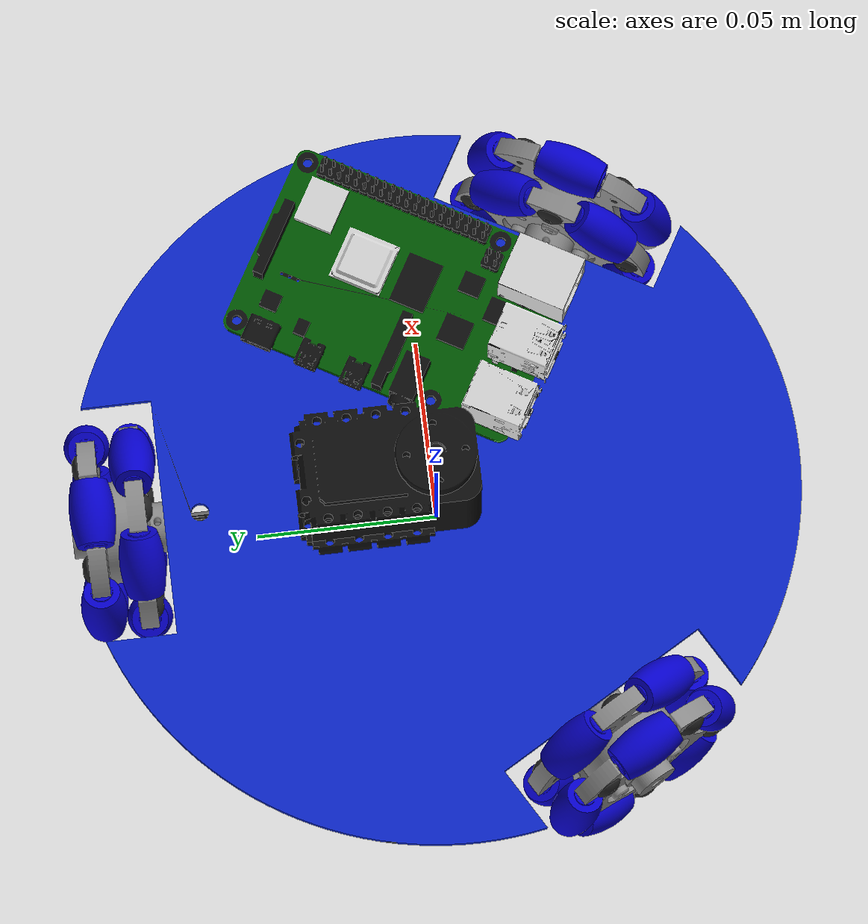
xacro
<?xml version="1.0"?>
<robot name="omni_robot" xmlns:xacro="http://ros.org/wiki/xacro">

  <!-- xacro property -->
  <xacro:property name="M_PI" value="3.14159274"/>

  <!-- xacro include file -->
  <xacro:include filename="$(find simple_rbt)/model/omni/urdf/base/base.urdf.xacro"/>  <!--base-->
  <xacro:include filename="$(find simple_rbt)/model/omni/urdf/omni_wheel/omni_wheel.urdf.xacro"/>   <!--omni-wheel-->
  <xacro:include filename="$(find simple_rbt)/model/omni/urdf/roller/roller.urdf.xacro"/>   <!--roller-->

  <!-- =============== Link & Joint =============== -->
  <!-- Base -->
  <link name="base_footprint"/>
  <xacro:base_v0 parent="base_footprint">
        <origin xyz="0 0 0.035" rpy="0 0 0" />
  </xacro:base_v0>

  <!-- Wheel -->
  <!-- 1st wheel -->
  <xacro:wheel_v0 prefix="first" parent="base_link">
	<origin xyz="0 0.088 -0.01" rpy="0 0 3.141593"/>
	<axis xyz="0 1 0"/>
  </xacro:wheel_v0>

  <xacro:roller_v0 prefix="r1_F" parent="first_wheel_link">
	<origin xyz="0 -0.006 0.024063" rpy="0 0 1.570796"/>
	<axis xyz="0 1 0"/>
  </xacro:roller_v0>
  <xacro:roller_v0 prefix="r2_F" parent="first_wheel_link">
	<origin xyz="-0.0228853 -0.006 0.0074359" rpy="-1.256637 0 1.570796"/>
	<axis xyz="0 1 0"/>
  </xacro:roller_v0>
  <xacro:roller_v0 prefix="r3_F" parent="first_wheel_link">
	<origin xyz="-0.0141439 -0.006 -0.0194674" rpy="-2.513274 0 1.570796"/>
	<axis xyz="0 1 0"/>
  </xacro:roller_v0>
  <xacro:roller_v0 prefix="r4_F" parent="first_wheel_link">
	<origin xyz="0.0141439 -0.006 -0.0194674" rpy="-3.769911 0 1.570796"/>
	<axis xyz="0 1 0"/>
  </xacro:roller_v0>
  <xacro:roller_v0 prefix="r5_F" parent="first_wheel_link">
	<origin xyz="0.0228853 -0.006 0.0074359" rpy="-5.026548 0 1.570796"/>
	<axis xyz="0 1 0"/>
  </xacro:roller_v0>

  <xacro:roller_v0 prefix="r6_F" parent="first_wheel_link">
	<origin xyz="0 0.006 -0.024063" rpy="0 0 1.570796"/>
	<axis xyz="0 1 0"/>
  </xacro:roller_v0>
  <xacro:roller_v0 prefix="r7_F" parent="first_wheel_link">
	<origin xyz="0.0228853 0.006 -0.0074359" rpy="-1.256637 0 1.570796"/>
	<axis xyz="0 1 0"/>
  </xacro:roller_v0>
  <xacro:roller_v0 prefix="r8_F" parent="first_wheel_link">
	<origin xyz="0.0141439 0.006 0.0194674" rpy="-2.513274 0 1.570796"/>
	<axis xyz="0 1 0"/>
  </xacro:roller_v0>
  <xacro:roller_v0 prefix="r9_F" parent="first_wheel_link">
	<origin xyz="-0.0141439 0.006 0.0194674" rpy="-3.769911 0 1.570796"/>
	<axis xyz="0 1 0"/>
  </xacro:roller_v0>
  <xacro:roller_v0 prefix="r10_F" parent="first_wheel_link">
	<origin xyz="-0.0228853 0.006 -0.0074359" rpy="-5.026548 0 1.570796"/>
	<axis xyz="0 1 0"/>
  </xacro:roller_v0>

  <!-- 2nd wheel -->
  <xacro:wheel_v0 prefix="second" parent="base_link">
	<origin xyz="-0.0762 -0.044 -0.01" rpy="0 0 5.235988" />
	<axis xyz="0 1 0"/>
  </xacro:wheel_v0>

  <xacro:roller_v0 prefix="r1_S" parent="second_wheel_link">
	<origin xyz="0 -0.006 0.024063" rpy="0 0 1.570796"/>
	<axis xyz="0 1 0"/>
  </xacro:roller_v0>
  <xacro:roller_v0 prefix="r2_S" parent="second_wheel_link">
	<origin xyz="-0.0228853 -0.006 0.0074359" rpy="-1.256637 0 1.570796"/>
	<axis xyz="0 1 0"/>
  </xacro:roller_v0>
  <xacro:roller_v0 prefix="r3_S" parent="second_wheel_link">
	<origin xyz="-0.0141439 -0.006 -0.0194674" rpy="-2.513274 0 1.570796"/>
	<axis xyz="0 1 0"/>
  </xacro:roller_v0>
  <xacro:roller_v0 prefix="r4_S" parent="second_wheel_link">
	<origin xyz="0.0141439 -0.006 -0.0194674" rpy="-3.769911 0 1.570796"/>
	<axis xyz="0 1 0"/>
  </xacro:roller_v0>
  <xacro:roller_v0 prefix="r5_S" parent="second_wheel_link">
	<origin xyz="0.0228853 -0.006 0.0074359" rpy="-5.026548 0 1.570796"/>
	<axis xyz="0 1 0"/>
  </xacro:roller_v0>

  <xacro:roller_v0 prefix="r6_S" parent="second_wheel_link">
	<origin xyz="0 0.006 -0.024063" rpy="0 0 1.570796"/>
	<axis xyz="0 1 0"/>
  </xacro:roller_v0>
  <xacro:roller_v0 prefix="r7_S" parent="second_wheel_link">
	<origin xyz="0.0228853 0.006 -0.0074359" rpy="-1.256637 0 1.570796"/>
	<axis xyz="0 1 0"/>
  </xacro:roller_v0>
  <xacro:roller_v0 prefix="r8_S" parent="second_wheel_link">
	<origin xyz="0.0141439 0.006 0.0194674" rpy="-2.513274 0 1.570796"/>
	<axis xyz="0 1 0"/>
  </xacro:roller_v0>
  <xacro:roller_v0 prefix="r9_S" parent="second_wheel_link">
	<origin xyz="-0.0141439 0.006 0.0194674" rpy="-3.769911 0 1.570796"/>
	<axis xyz="0 1 0"/>
  </xacro:roller_v0>
  <xacro:roller_v0 prefix="r10_S" parent="second_wheel_link">
	<origin xyz="-0.0228853 0.006 -0.0074359" rpy="-5.026548 0 1.570796"/>
	<axis xyz="0 1 0"/>
  </xacro:roller_v0>

<!-- 3rd wheel -->
  <xacro:wheel_v0 prefix="third" parent="base_link">
	<origin xyz="0.0762 -0.044 -0.01" rpy="0 0 1.047197" />
	<axis xyz="0 1 0"/>
  </xacro:wheel_v0>

  <xacro:roller_v0 prefix="r1_T" parent="third_wheel_link">
	<origin xyz="0 -0.006 0.024063" rpy="0 0 1.570796"/>
	<axis xyz="0 1 0"/>
  </xacro:roller_v0>
  <xacro:roller_v0 prefix="r2_T" parent="third_wheel_link">
	<origin xyz="-0.0228853 -0.006 0.0074359" rpy="-1.256637 0 1.570796"/>
	<axis xyz="0 1 0"/>
  </xacro:roller_v0>
  <xacro:roller_v0 prefix="r3_T" parent="third_wheel_link">
	<origin xyz="-0.0141439 -0.006 -0.0194674" rpy="-2.513274 0 1.570796"/>
	<axis xyz="0 1 0"/>
  </xacro:roller_v0>
  <xacro:roller_v0 prefix="r4_T" parent="third_wheel_link">
	<origin xyz="0.0141439 -0.006 -0.0194674" rpy="-3.769911 0 1.570796"/>
	<axis xyz="0 1 0"/>
  </xacro:roller_v0>
  <xacro:roller_v0 prefix="r5_T" parent="third_wheel_link">
	<origin xyz="0.0228853 -0.006 0.0074359" rpy="-5.026548 0 1.570796"/>
	<axis xyz="0 1 0"/>
  </xacro:roller_v0>

  <xacro:roller_v0 prefix="r6_T" parent="third_wheel_link">
	<origin xyz="0 0.006 -0.024063" rpy="0 0 1.570796"/>
	<axis xyz="0 1 0"/>
  </xacro:roller_v0>
  <xacro:roller_v0 prefix="r7_T" parent="third_wheel_link">
	<origin xyz="0.0228853 0.006 -0.0074359" rpy="-1.256637 0 1.570796"/>
	<axis xyz="0 1 0"/>
  </xacro:roller_v0>
  <xacro:roller_v0 prefix="r8_T" parent="third_wheel_link">
	<origin xyz="0.0141439 0.006 0.0194674" rpy="-2.513274 0 1.570796"/>
	<axis xyz="0 1 0"/>
  </xacro:roller_v0>
  <xacro:roller_v0 prefix="r9_T" parent="third_wheel_link">
	<origin xyz="-0.0141439 0.006 0.0194674" rpy="-3.769911 0 1.570796"/>
	<axis xyz="0 1 0"/>
  </xacro:roller_v0>
  <xacro:roller_v0 prefix="r10_T" parent="third_wheel_link">
	<origin xyz="-0.0228853 0.006 -0.0074359" rpy="-5.026548 0 1.570796"/>
	<axis xyz="0 1 0"/>
  </xacro:roller_v0>

  <!-- ===============  Transmission =============== -->
  <xacro:wheel_trans_v0 prefix="first"/>
  <xacro:wheel_trans_v0 prefix="second"/>
  <xacro:wheel_trans_v0 prefix="third"/>
  <!-- =============== Gazebo =============== -->
  <gazebo>
    <plugin name="gazebo_ros_control" filename="libgazebo_ros_control.so">
      <robotNamespace>$(arg robot_namespace)</robotNamespace>
    </plugin>
  </gazebo>

  <!-- Base -->
  <xacro:base_gazebo_v0/>

  <!-- Wheel -->
  <xacro:wheel_gazebo_v0 prefix="first"/>
  <xacro:wheel_gazebo_v0 prefix="second"/>
  <xacro:wheel_gazebo_v0 prefix="third"/>
</robot>

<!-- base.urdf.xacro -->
<robot xmlns:xacro="http://ros.org/wiki/xacro">

  <xacro:include filename="$(find simple_rbt)/model/omni/urdf/base/base.gazebo.xacro"/>

  <xacro:macro name="base_v0" params="parent *joint_origin">
	<joint name="base_link_joint" type="fixed">
	  <xacro:insert_block name="joint_origin"/>
	  <parent link="${parent}"/>
	  <child link="base_link"/>
	</joint>

	<link name="base_link">
	  <visual>
		<geometry>
		  <mesh filename="package://simple_rbt/model/omni/meshes/DAE/base/omni_wheel_body.dae"/>
		</geometry>
	  </visual>
	  <collision>
		<geometry>
		  <mesh filename="package://simple_rbt/model/omni/meshes/STL/base/base_link.stl"/>
		</geometry>
	  </collision>
	  <inertial>
		<origin xyz="0 0 0"/>
		<mass value="1.167"/>
		<inertia ixx="0.0016" ixy="0" ixz="0" iyy="0.0016" iyz="0" izz="0.0032" />
	  </inertial>
          <surface>
            <friction>
              <ode>
                <mu>0.8</mu>
                <mu2>0.8</mu2>
                <kp>1e15</kp>
                <kd>1e13</kd>
              </ode>
            </friction>
            <bounce>
              <restitution_coefficient>0.01</restitution_coefficient>
              <threshold>10</threshold>
            </bounce>
            <contact>
              <ode>
                <max_vel>0.01</max_vel>
                <minDepth>0</minDepth>
                <contact_surface_layer>0</contact_surface_layer>
              </ode>
            </contact>
          </surface>
	</link>
  </xacro:macro>

</robot>

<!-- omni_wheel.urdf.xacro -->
<robot xmlns:xacro="http://ros.org/wiki/xacro">

  <xacro:include filename="$(find simple_rbt)/model/omni/urdf/omni_wheel/omni_wheel.transmission.xacro"/>
  <xacro:include filename="$(find simple_rbt)/model/omni/urdf/omni_wheel/omni_wheel.gazebo.xacro"/>

  <xacro:macro name="wheel_v0" params="prefix parent *joint_origin *joint_axis">
	<joint name="${prefix}_wheel_joint" type="continuous">
	  <xacro:insert_block name="joint_origin"/>
	  <parent link="${parent}"/>
	  <child link="${prefix}_wheel_link"/>
          <limit effort="100" velocity="100"/>
	  <xacro:insert_block name="joint_axis"/>
	</joint>

	<link name="${prefix}_wheel_link">
	  <visual>
		<geometry>
		  <mesh filename="package://simple_rbt/model/omni/meshes/DAE/omni_wheel/omni_wheel.dae"/>
		</geometry>
	  </visual>
	  <collision>
		<geometry>
		  <mesh filename="package://simple_rbt/model/omni/meshes/STL/omni_wheel/omni_wheel.stl"/>
		</geometry>
	  </collision>
	  <inertial>
		<origin xyz="0.0 -0.011 -0.0"/>
		<mass value="0.25"/>
		<inertia ixx="0.00031" ixy="0" ixz="0" iyy="0.0005" iyz="0" izz="0.00031"/>
	  </inertial>
          <surface>
            <friction>
              <ode>
                <mu1>1.2</mu1>
                <mu2>1.2</mu2>
                <kp>1e15</kp>
                <kd>1e13</kd>
              </ode>
            </friction>
            <bounce>
              <restitution_coefficient>0.01</restitution_coefficient>
              <threshold>0</threshold>
            </bounce>
            <contact>
              <ode>
                <max_vel>10</max_vel>
              </ode>
            </contact>
          </surface>
	</link>
  </xacro:macro>

</robot>

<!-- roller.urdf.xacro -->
<robot xmlns:xacro="http://ros.org/wiki/xacro">

  <xacro:include filename="$(find simple_rbt)/model/omni/urdf/roller/roller.transmission.xacro"/>
  <xacro:include filename="$(find simple_rbt)/model/omni/urdf/roller/roller.gazebo.xacro"/>

  <xacro:macro name="roller_v0" params="prefix parent *joint_origin *joint_axis">
	<joint name="${prefix}_roller_joint" type="continuous">
	  <xacro:insert_block name="joint_origin"/>
	  <parent link="${parent}"/>
	  <child link="${prefix}_roller_link"/>
	  <xacro:insert_block name="joint_axis"/>
	</joint>

	<link name="${prefix}_roller_link">
	  <visual>
		<geometry>
		  <mesh filename="package://simple_rbt/model/omni/meshes/DAE/roller/omni_roller.dae"/>
		</geometry>
	  </visual>
	  <collision>
		<geometry>
		  <mesh filename="package://simple_rbt/model/omni/meshes/STL/roller/roller.stl"/>
		</geometry>
	  </collision>
	  <inertial>
		<origin xyz="0.0 0.0 0.0"/>
		<mass value="0.009"/>
		<inertia ixx="0.000001257" ixy="0" ixz="0" iyy="0.000000342" iyz="0" izz="0.000001257"/>
	  </inertial>
          <surface>
            <friction>
              <ode>
                <mu1>1.2</mu1>
                <mu2>1.2</mu2>
                <kp>1e15</kp>
                <kd>1e13</kd>
              </ode>
            </friction>
            <bounce>
              <restitution_coefficient>0.01</restitution_coefficient>
              <threshold>0</threshold>
            </bounce>
            <contact>
              <ode>
                <max_vel>10</max_vel>
              </ode>
            </contact>
          </surface>
	</link>
  </xacro:macro>

</robot>
